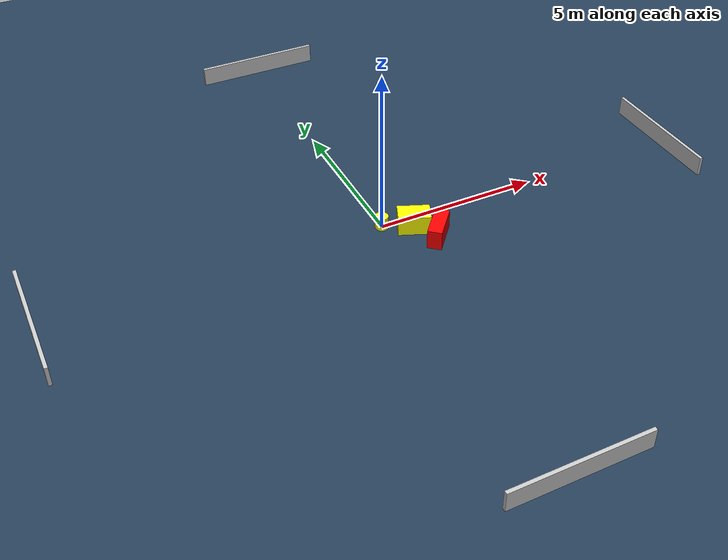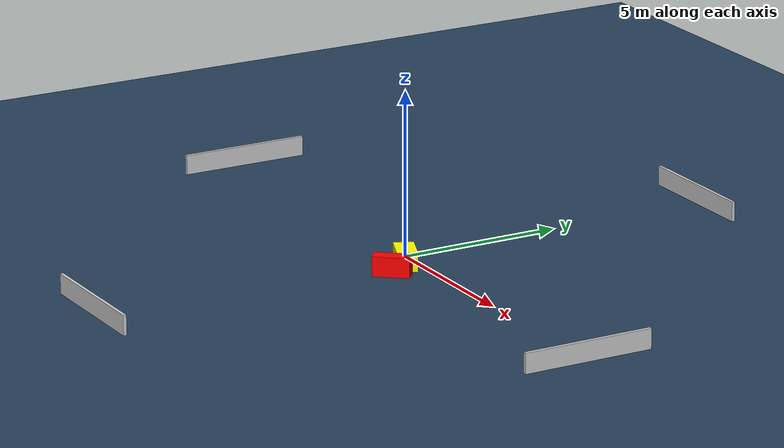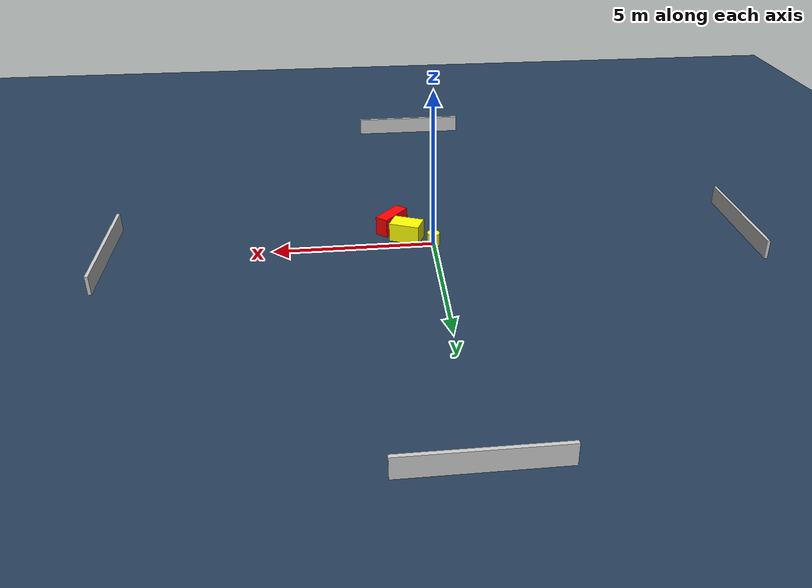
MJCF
<?xml version="1.0" ?>
<mujoco model="generated_environment">
  <option timestep="0.01" integrator="RK4" cone="elliptic"/>
  <default>
    <geom density="1"/>
  </default>
  <asset>
    <texture builtin="gradient" height="3072" name="skybox" rgb1="0.3 0.5 0.7" rgb2="0 0 0" type="skybox" width="512"/>
    <texture builtin="checker" height="300" name="groundplane" rgb1="0.2 0.3 0.4" rgb2="0.1 0.2 0.3" type="2d" width="300"/>
    <material name="groundplane" reflectance="0.2" texrepeat="5 5" texture="groundplane"/>
  </asset>
  <worldbody>
    <light dir="0 0 -1" directional="true" pos="0 0 1.5"/>
    <geom condim="3" friction="0.5 0.005 0.001" material="groundplane" name="floor" pos="0 0 0" size="0 0 0.05" type="plane"/>
    <body name="walls">
      <geom name="wall_1" condim="4" pos="-10.0 0.0 0.3" rgba="0.800000011920929 0.800000011920929 0.800000011920929 1.0" size="0.05 2.0 0.3" type="box"/>
      <geom name="wall_2" condim="4" pos="10.0 0.0 0.3" rgba="0.800000011920929 0.800000011920929 0.800000011920929 1.0" size="0.05 2.0 0.3" type="box"/>
      <geom name="wall_3" condim="4" pos="0.0 -10.0 0.3" rgba="0.800000011920929 0.800000011920929 0.800000011920929 1.0" size="2.0 0.05 0.3" type="box"/>
      <geom name="wall_4" condim="4" pos="0.0 10.0 0.3" rgba="0.800000011920929 0.800000011920929 0.800000011920929 1.0" size="2.0 0.05 0.3" type="box"/>
    </body>
    <body name="robot">
      <joint name="joint_x" type="slide" pos="0 0 0" axis="1 0 0"/>
      <joint name="joint_y" type="slide" pos="0 0 0" axis="0 1 0"/>
      <geom name="robot" type="cylinder" pos="0.0 0.0 0.2" size="0.2 0.2 0.0" mass="5.0" friction="1.0 0.005 0.0001" condim="4" rgba="1.0 1.0 0.0 1.0"/>
    </body>
    <body name="obstacle_1_movable">
      <geom name="obstacle_1_movable" condim="4" pos="0.8081030571978751 -0.46038481291621386 0.3" euler="0 0 67.62163359404767" friction="0.0 0.005 0.001" rgba="1.0 1.0 0.0 1.0" size="0.3069541890738544 0.48002812271501355 0.3" type="box" mass="0.1"/>
      <joint type="free"/>
    </body>
    <body name="obstacle_2_static">
      <geom name="obstacle_2_static" condim="4" pos="1.2409139748462983 -1.1429239463830811 0.3" euler="0 0 139.55300227421426" friction="0.0 0.005 0.001" rgba="1.0 0.0 0.0 1.0" size="0.21455587246071517 0.549729460205642 0.3" type="box"/>
    </body>
  </worldbody>
  <actuator>
    <motor name="actuator_x" joint="joint_x" gear="1" ctrlrange="-1 1"/>
    <motor name="actuator_y" joint="joint_y" gear="1" ctrlrange="-1 1"/>
  </actuator>
</mujoco>
